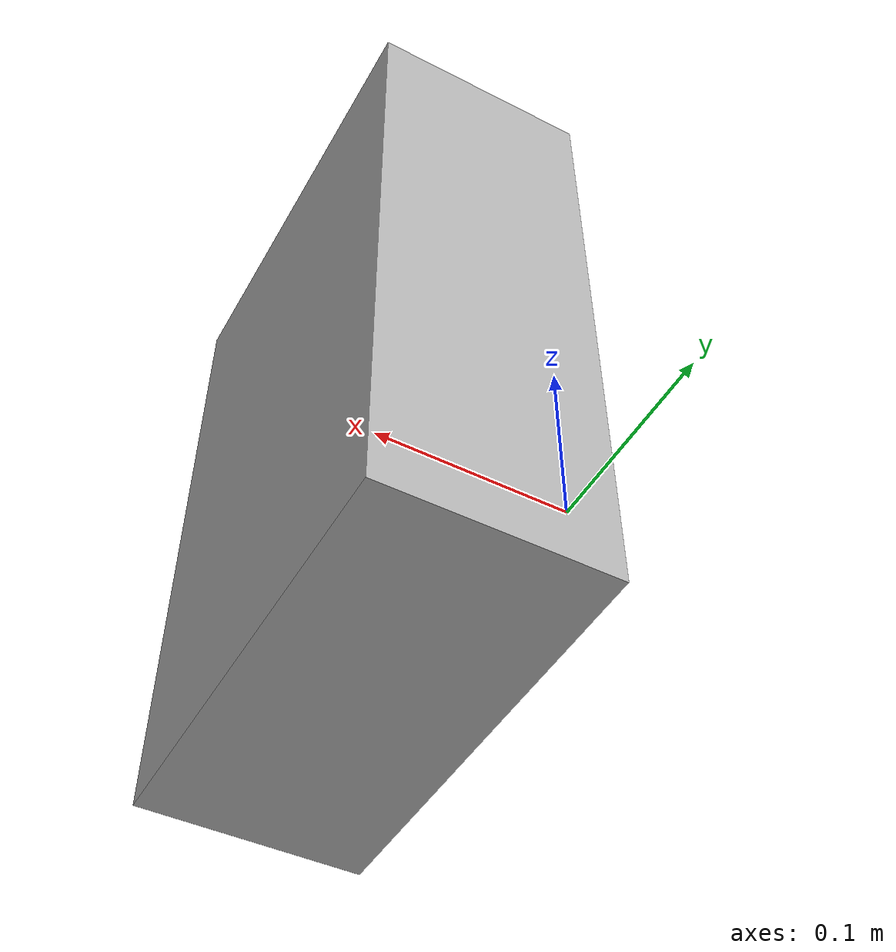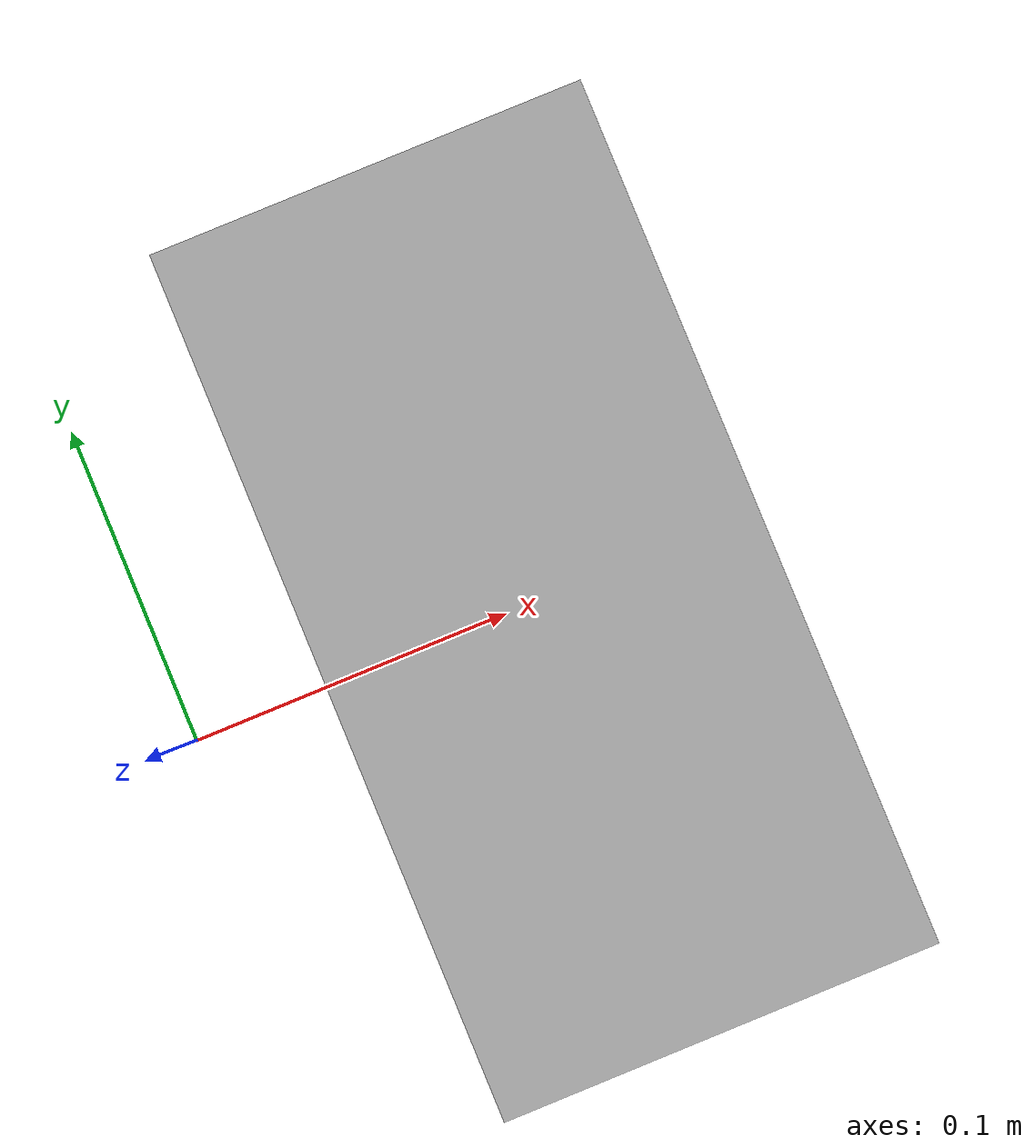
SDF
<?xml version="1.0" ?>
<sdf version="1.7">
  <model name="single_pendulum">
    <link name="link 1">
      <pose>0.1 0 0 0 0 0</pose>
      <inertial>
        <pose>0 0 0 0 0 0</pose>
        <mass>5</mass>
        <inertia>
          <ixx>1</ixx>
          <ixy>0</ixy>
          <ixz>0</ixz>
          <iyy>2</iyy>
          <iyz>0</iyz>
          <izz>3</izz>
        </inertia>
      </inertial>
      <visual name="visual 1">
        <geometry>
          <box>
            <size>0.1 0.2 0.3</size>
          </box>
        </geometry>
      </visual>
      <collision name="collision 1">
        <geometry>
          <box>
            <size>0.1 0.2 0.3</size>
          </box>
        </geometry>
      </collision>
    </link>
    <joint name="joint 1" type="revolute">
      <pose>-0.1 0 0 0 0 0</pose>
      <parent>world</parent>
      <child>link 1</child>
      <axis>
        <xyz>0 0 1</xyz>
        <dynamics>
          <damping>10</damping>
        </dynamics>
      </axis>
    </joint>
  </model>
</sdf>
